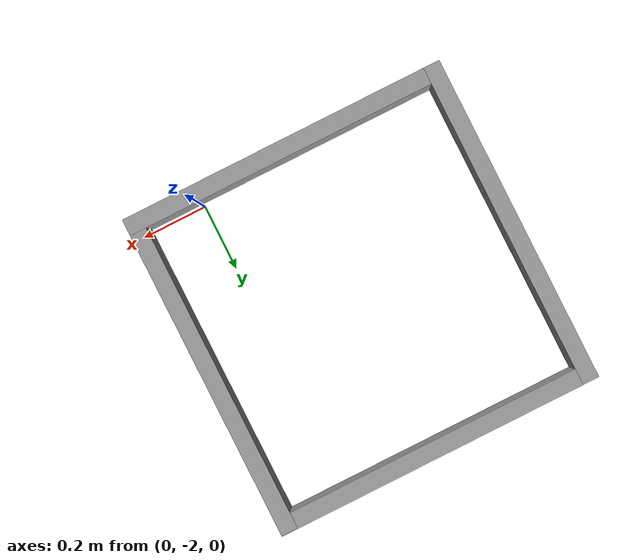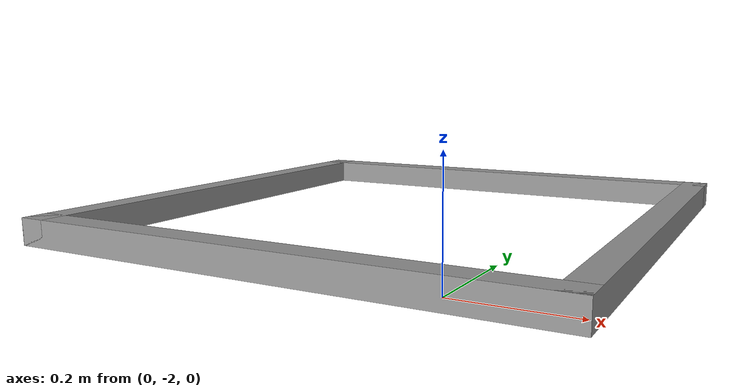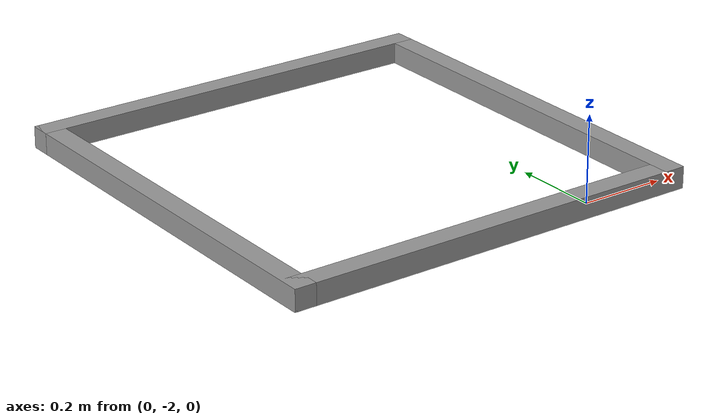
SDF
<?xml version='1.0'?>
<sdf version='1.7'>
  <model name='square'>
    <link name='Wall_0'>
      <collision name='Wall_0_Collision'>
        <geometry>
          <box>
            <size>1 0.05 0.05</size>
          </box>
        </geometry>
        <pose>0 0 0.025 0 -0 0</pose>
      </collision>
      <visual name='Wall_0_Visual'>
        <pose>0 0 0.025 0 -0 0</pose>
        <geometry>
          <box>
            <size>1 0.05 0.05</size>
          </box>
        </geometry>
        <material>
          <script>
            <uri>file://media/materials/scripts/gazebo.material</uri>
            <name>Gazebo/Grey</name>
          </script>
          <ambient>1 1 1 1</ambient>
        </material>
        <meta>
          <layer>0</layer>
        </meta>
      </visual>
      <pose>-0.7575 -1.56003 0 0 -0 -1.5708</pose>
    </link>
    <link name='Wall_1'>
      <collision name='Wall_1_Collision'>
        <geometry>
          <box>
            <size>1 0.05 0.05</size>
          </box>
        </geometry>
        <pose>0 0 0.025 0 -0 0</pose>
      </collision>
      <visual name='Wall_1_Visual'>
        <pose>0 0 0.025 0 -0 0</pose>
        <geometry>
          <box>
            <size>1 0.05 0.05</size>
          </box>
        </geometry>
        <material>
          <script>
            <uri>file://media/materials/scripts/gazebo.material</uri>
            <name>Gazebo/Grey</name>
          </script>
          <ambient>1 1 1 1</ambient>
        </material>
        <meta>
          <layer>0</layer>
        </meta>
      </visual>
      <pose>-0.2825 -2.03503 0 0 -0 0</pose>
    </link>
    <link name='Wall_2'>
      <collision name='Wall_2_Collision'>
        <geometry>
          <box>
            <size>0.997528 0.05 0.05</size>
          </box>
        </geometry>
        <pose>0 0 0.025 0 -0 0</pose>
      </collision>
      <visual name='Wall_2_Visual'>
        <pose>0 0 0.025 0 -0 0</pose>
        <geometry>
          <box>
            <size>0.997528 0.05 0.05</size>
          </box>
        </geometry>
        <material>
          <script>
            <uri>file://media/materials/scripts/gazebo.material</uri>
            <name>Gazebo/Grey</name>
          </script>
          <ambient>1 1 1 1</ambient>
        </material>
        <meta>
          <layer>0</layer>
        </meta>
      </visual>
      <pose>0.1925 -1.56126 0 0 -0 1.5708</pose>
    </link>
    <link name='Wall_3'>
      <collision name='Wall_3_Collision'>
        <geometry>
          <box>
            <size>1 0.05 0.05</size>
          </box>
        </geometry>
        <pose>0 0 0.025 0 -0 0</pose>
      </collision>
      <visual name='Wall_3_Visual'>
        <pose>0 0 0.025 0 -0 0</pose>
        <geometry>
          <box>
            <size>1 0.05 0.05</size>
          </box>
        </geometry>
        <material>
          <script>
            <uri>file://media/materials/scripts/gazebo.material</uri>
            <name>Gazebo/Grey</name>
          </script>
          <ambient>1 1 1 1</ambient>
        </material>
        <meta>
          <layer>0</layer>
        </meta>
      </visual>
      <pose>-0.2825 -1.08503 0 0 -0 3.14159</pose>
    </link>
    <static>1</static>
  </model>
</sdf>
